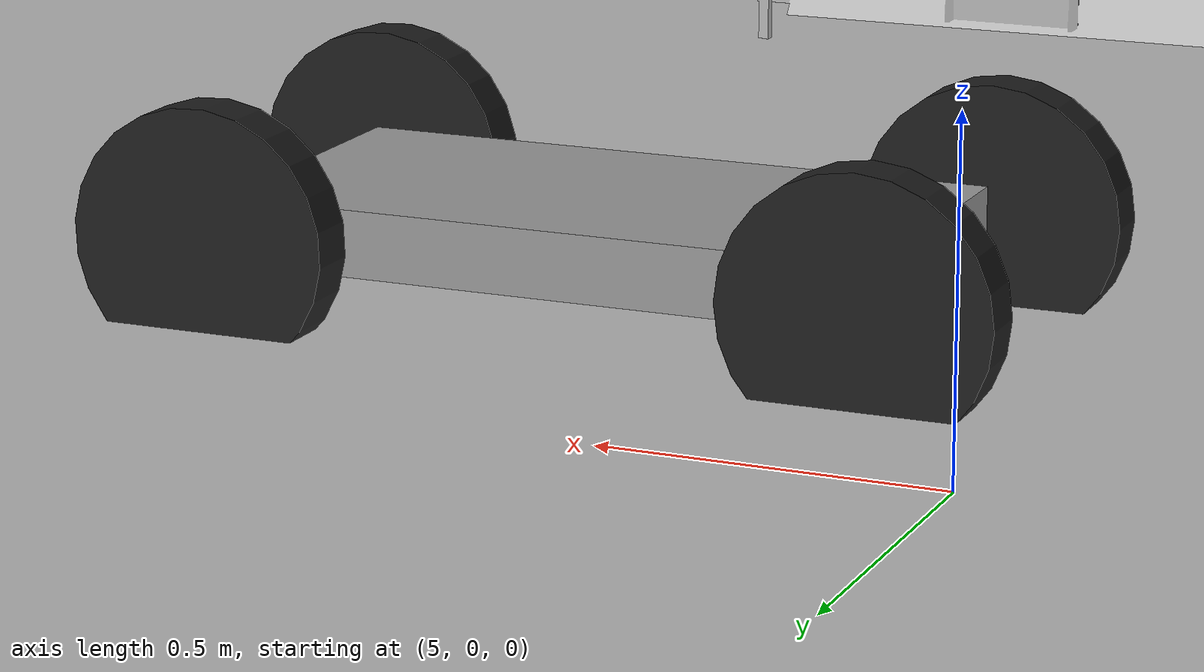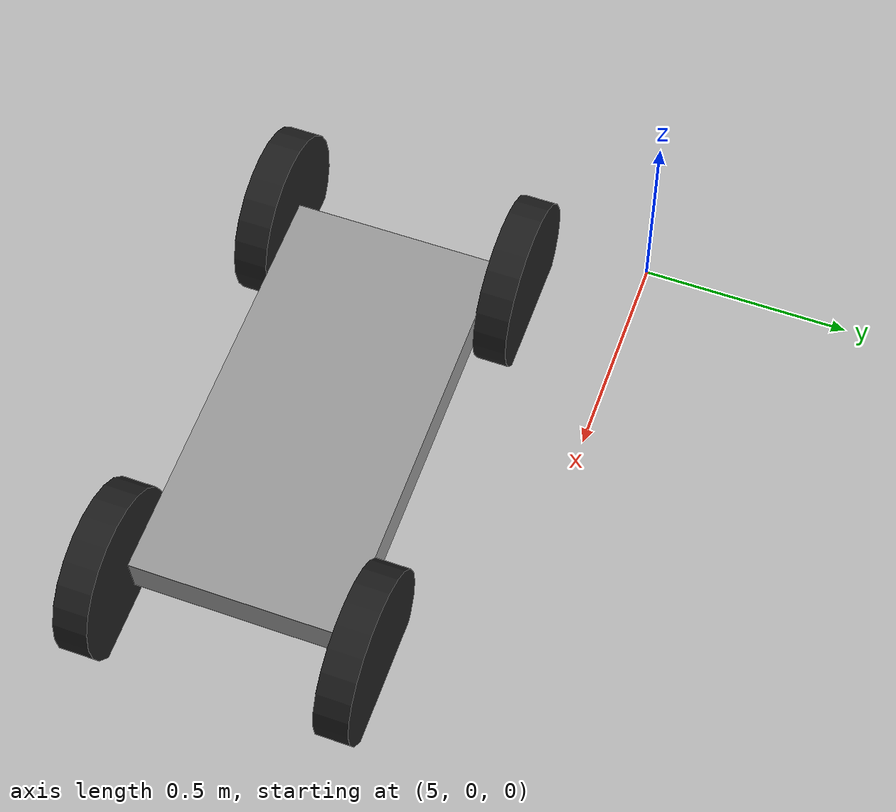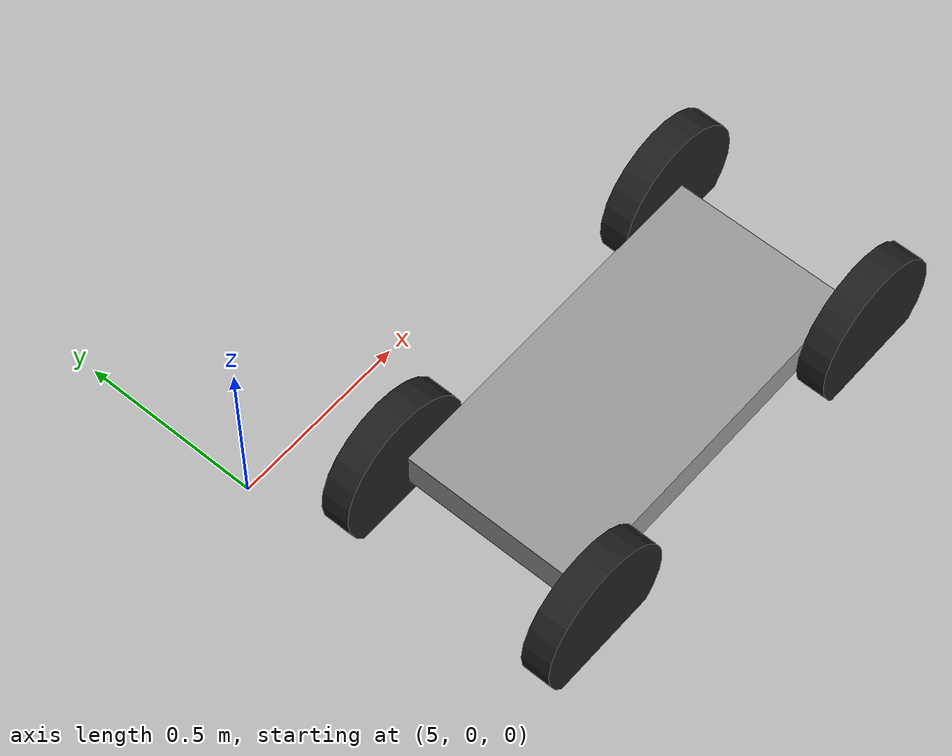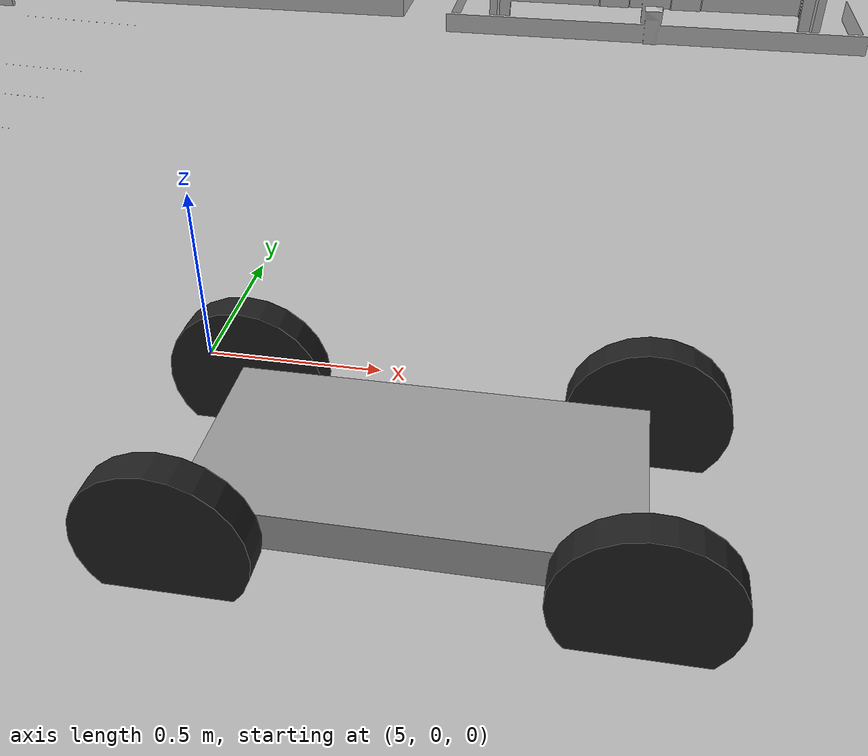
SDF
<sdf version="1.10">
 <world name="default">
  <physics type="ode">
   <real_time_update_rate>1000</real_time_update_rate>
   <max_step_size>0.001</max_step_size>
   <real_time_factor>1</real_time_factor>
   <ode>
    <solver>
     <type>quick</type>
     <iters>150</iters>
     <precon_iters>0</precon_iters>
     <sor>1.3999999999999999</sor>
     <use_dynamic_moi_rescaling>true</use_dynamic_moi_rescaling>
    </solver>
    <constraints>
     <cfm>1.0000000000000001e-05</cfm>
     <erp>0.20000000000000001</erp>
     <contact_max_correcting_vel>2000</contact_max_correcting_vel>
     <contact_surface_layer>0.01</contact_surface_layer>
    </constraints>
   </ode>
  </physics>
  <plugin name="gz::sim::systems::Physics" filename="gz-sim-physics-system"/>
  <plugin name="gz::sim::systems::UserCommands" filename="gz-sim-user-commands-system"/>
  <plugin name="gz::sim::systems::SceneBroadcaster" filename="gz-sim-scene-broadcaster-system"/>
  <plugin name="gz::sim::systems::Sensors" filename="gz-sim-sensors-system">
   <render_engine>ogre2</render_engine>
  </plugin>
  <plugin name="gz::sim::systems::Imu" filename="gz-sim-imu-system"/>
  <gravity>0 0 -9.8000000000000007</gravity>
  <magnetic_field>5.5644999999999998e-06 2.2875799999999999e-05 -4.2388400000000002e-05</magnetic_field>
  <atmosphere type="adiabatic"/>
  <scene>
   <ambient>0.400000006 0.400000006 0.400000006 1</ambient>
   <background>0.699999988 0.699999988 0.699999988 1</background>
   <shadows>true</shadows>
  </scene>
  <include>
   <uri>https://fuel.gazebosim.org/1.0/OpenRobotics/models/Ground Plane</uri>
   <name>ground_plane</name>
  </include>
  <include><pose>0.1 -0.1 0.005 1.57 0 0</pose><uri>model://street_environment</uri></include>
  <include><pose>5.72 -0.56 0 0 0 0</pose><uri>model://car</uri></include>
  <light name="sun" type="directional">
   <pose>0 0 10 0 0 0</pose>
   <intensity>1</intensity>
   <direction>-0.5 0.10000000000000001 -0.90000000000000002</direction>
   <diffuse>0.800000012 0.800000012 0.800000012 1</diffuse>
   <specular>0.200000003 0.200000003 0.200000003 1</specular>
   <attenuation>
    <range>1000</range>
    <linear>0.01</linear>
    <constant>0.90000000000000002</constant>
    <quadratic>0.001</quadratic>
   </attenuation>
   <spot><inner_angle>0</inner_angle><outer_angle>0</outer_angle><falloff>0</falloff></spot>
  </light>
 </world>
</sdf>

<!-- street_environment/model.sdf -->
<sdf version="1.6">
  <model name="street_environment">
    <static>true</static>
    <link name="link">

      <!-- COLISIÓN -->
      <collision name="collision">
        <geometry>
          <mesh>
            <scale>0.2 0.2 0.2</scale>
            <uri>model://street_environment/meshes/Street_environment_V02.obj</uri>
          </mesh>
        </geometry>
      </collision>

      <!-- VISUAL -->
      <visual name="visual">
        <geometry>
          <mesh>
            <scale>0.2 0.2 0.2</scale>
             <uri>model://street_environment/meshes/Street_environment_V02.obj</uri>
          </mesh>
        </geometry>
      </visual>

    </link>
  </model>
</sdf>

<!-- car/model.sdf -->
<sdf version='1.7'>
    <model name="my_robot">
      <link name='chassis'>
        <pose>0 0 0.15 0 -0 0</pose>
        <inertial>
          <pose>0.1 0 0 0 -0 0</pose>
          <mass>10</mass>
          <inertia>
            <ixx>0.216667</ixx>
            <iyy>0.841667</iyy>
            <izz>1.04167</izz>
            <ixy>0</ixy>
            <ixz>0</ixz>
            <iyz>0</iyz>
          </inertia>
        </inertial>
        <collision name='collision'>
          <geometry>
            <box>
              <size>1 0.5 0.1</size>
            </box>
          </geometry>
          <max_contacts>10</max_contacts>
          <surface>
            <contact>
              <ode/>
            </contact>
            <bounce/>
            <friction>
              <torsional>
                <ode/>
              </torsional>
              <ode/>
            </friction>
          </surface>
        </collision>
        <visual name='visual'>
          <geometry>
            <box>
              <size>1 0.5 0.1</size>
            </box>
          </geometry>
          <material>
            <script>
              <uri>file://media/materials/scripts/gazebo.material</uri>
              <name>Gazebo/Grey</name>
            </script>
          </material>
        </visual>
        <self_collide>0</self_collide>
        <enable_wind>0</enable_wind>
        <kinematic>0</kinematic>
      </link>
      <link name='wheel_front_left'>
        <pose>0.5 0.298 0.15 -1.5708 -0.087266 0</pose>
        <inertial>
          <mass>0.5</mass>
          <inertia>
            <ixx>0.00307917</ixx>
            <iyy>0.00307917</iyy>
            <izz>0.005625</izz>
            <ixy>0</ixy>
            <ixz>0</ixz>
            <iyz>0</iyz>
          </inertia>
          <pose>0 0 0 0 -0 0</pose>
        </inertial>
        <collision name='collision'>
          <geometry>
            <cylinder>
              <radius>0.2</radius>
              <length>0.08</length>
            </cylinder>
          </geometry>
          <max_contacts>10</max_contacts>
          <surface>
            <contact>
              <ode/>
            </contact>
            <bounce/>
            <friction>
              <torsional>
                <ode/>
              </torsional>
              <ode/>
            </friction>
          </surface>
        </collision>
        <visual name='visual'>
          <geometry>
            <cylinder>
              <radius>0.2</radius>
              <length>0.08</length>
            </cylinder>
          </geometry>
          <material>
            <script>
              <uri>file://media/materials/scripts/gazebo.material</uri>
              <name>Gazebo/Black</name>
            </script>
          </material>
        </visual>
        <self_collide>0</self_collide>
        <enable_wind>0</enable_wind>
        <kinematic>0</kinematic>
      </link>
      <joint name='wheel_front_left_steer' type='revolute'>
        <parent>chassis</parent>
        <child>wheel_front_left</child>
        <axis>
          <xyz>0 0 1</xyz>
          <limit>
            <upper>1e+16</upper>
            <lower>-1e+16</lower>
          </limit>
          <dynamics>
            <spring_reference>0</spring_reference>
            <spring_stiffness>0</spring_stiffness>
          </dynamics>
        </axis>
      </joint>
      <link name='wheel_front_right'>
        <pose>0.5 -0.298 0.15 -1.5708 -0.087266 0</pose>
        <inertial>
          <mass>0.5</mass>
          <inertia>
            <ixx>0.00307917</ixx>
            <iyy>0.00307917</iyy>
            <izz>0.005625</izz>
            <ixy>0</ixy>
            <ixz>0</ixz>
            <iyz>0</iyz>
          </inertia>
          <pose>0 0 0 0 -0 0</pose>
        </inertial>
        <collision name='collision'>
          <geometry>
            <cylinder>
              <radius>0.2</radius>
              <length>0.08</length>
            </cylinder>
          </geometry>
          <max_contacts>10</max_contacts>
          <surface>
            <contact>
              <ode/>
            </contact>
            <bounce/>
            <friction>
              <torsional>
                <ode/>
              </torsional>
              <ode/>
            </friction>
          </surface>
        </collision>
        <visual name='visual'>
          <geometry>
            <cylinder>
              <radius>0.2</radius>
              <length>0.08</length>
            </cylinder>
          </geometry>
          <material>
            <script>
              <uri>file://media/materials/scripts/gazebo.material</uri>
              <name>Gazebo/Black</name>
            </script>
          </material>
        </visual>
        <self_collide>0</self_collide>
        <enable_wind>0</enable_wind>
        <kinematic>0</kinematic>
      </link>
      <joint name='wheel_front_right_steer' type='revolute'>
        <parent>chassis</parent>
        <child>wheel_front_right</child>
        <axis>
          <xyz>0 0 1</xyz>
          <limit>
            <upper>1e+16</upper>
            <lower>-1e+16</lower>
          </limit>
          <dynamics>
            <spring_reference>0</spring_reference>
            <spring_stiffness>0</spring_stiffness>
          </dynamics>
        </axis>
      </joint>
      <link name='wheel_rear_left'>
        <pose>-0.5 0.298 0.15 -1.5708 0 0</pose>
        <inertial>
          <mass>0.5</mass>
          <inertia>
            <ixx>0.00307917</ixx>
            <iyy>0.00307917</iyy>
            <izz>0.005625</izz>
            <ixy>0</ixy>
            <ixz>0</ixz>
            <iyz>0</iyz>
          </inertia>
          <pose>0 0 0 0 -0 0</pose>
        </inertial>
        <collision name='collision'>
          <geometry>
            <cylinder>
              <radius>0.2</radius>
              <length>0.08</length>
            </cylinder>
          </geometry>
          <max_contacts>10</max_contacts>
          <surface>
            <contact>
              <ode/>
            </contact>
            <bounce/>
            <friction>
              <torsional>
                <ode/>
              </torsional>
              <ode/>
            </friction>
          </surface>
        </collision>
        <visual name='visual'>
          <geometry>
            <cylinder>
              <radius>0.2</radius>
              <length>0.08</length>
            </cylinder>
          </geometry>
          <material>
            <script>
              <uri>file://media/materials/scripts/gazebo.material</uri>
              <name>Gazebo/Black</name>
            </script>
          </material>
        </visual>
        <self_collide>0</self_collide>
        <enable_wind>0</enable_wind>
        <kinematic>0</kinematic>
      </link>
      <joint name='left_wheel_back' type='revolute'>
        <parent>chassis</parent>
        <child>wheel_rear_left</child>
        <axis>
          <xyz>0 0 1</xyz>
          <limit>
            <lower>-1e+16</lower>
            <upper>1e+16</upper>
          </limit>
          <dynamics>
            <spring_reference>0</spring_reference>
            <spring_stiffness>0</spring_stiffness>
          </dynamics>
        </axis>
      </joint>
      <link name='wheel_rear_right'>
        <pose>-0.5 -0.298 0.15 -1.5708 0 0</pose>
        <inertial>
          <mass>0.5</mass>
          <inertia>
            <ixx>0.00307917</ixx>
            <iyy>0.00307917</iyy>
            <izz>0.005625</izz>
            <ixy>0</ixy>
            <ixz>0</ixz>
            <iyz>0</iyz>
          </inertia>
          <pose>0 0 0 0 -0 0</pose>
        </inertial>
        <collision name='collision'>
          <geometry>
            <cylinder>
              <radius>0.2</radius>
              <length>0.08</length>
            </cylinder>
          </geometry>
          <max_contacts>10</max_contacts>
          <surface>
            <contact>
              <ode/>
            </contact>
            <bounce/>
            <friction>
              <torsional>
                <ode/>
              </torsional>
              <ode/>
            </friction>
          </surface>
        </collision>
        <visual name='visual'>
          <geometry>
            <cylinder>
              <radius>0.2</radius>
              <length>0.08</length>
            </cylinder>
          </geometry>
          <material>
            <script>
              <uri>file://media/materials/scripts/gazebo.material</uri>
              <name>Gazebo/Black</name>
            </script>
          </material>
        </visual>
        <self_collide>0</self_collide>
        <enable_wind>0</enable_wind>
        <kinematic>0</kinematic>
      </link>
      <joint name='right_wheel_back' type='revolute'>
        <parent>chassis</parent>
        <child>wheel_rear_right</child>
        <axis>
          <xyz>0 0 1</xyz>
          <limit>
            <lower>-1e+16</lower>
            <upper>1e+16</upper>
          </limit>
          <dynamics>
            <spring_reference>0</spring_reference>
            <spring_stiffness>0</spring_stiffness>
          </dynamics>
        </axis>
      </joint>
      <pose>2.7216 -2.1701 0 0 -0 0</pose>
    </model>
</sdf>
